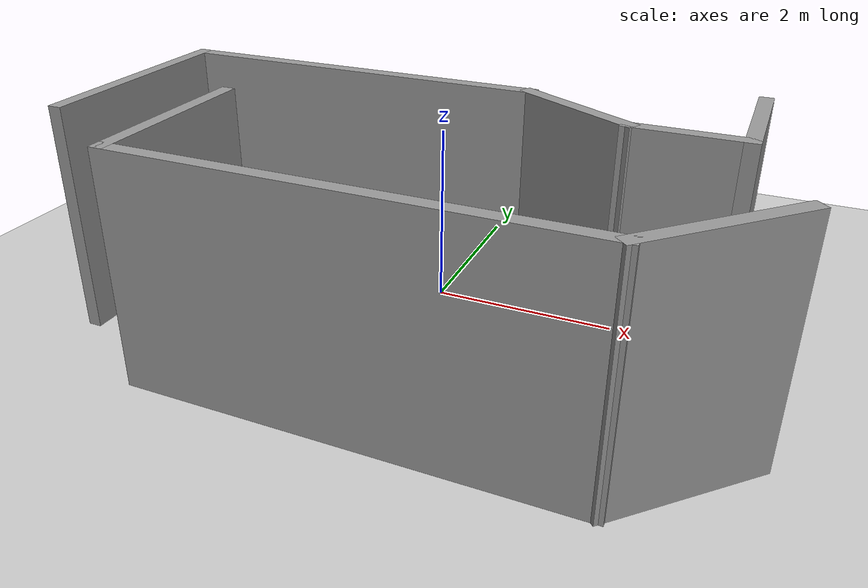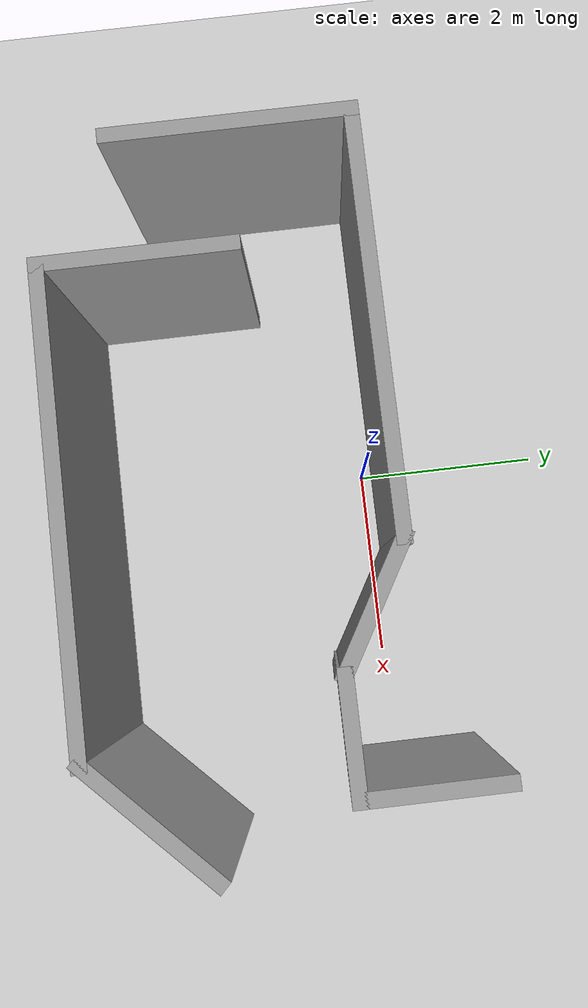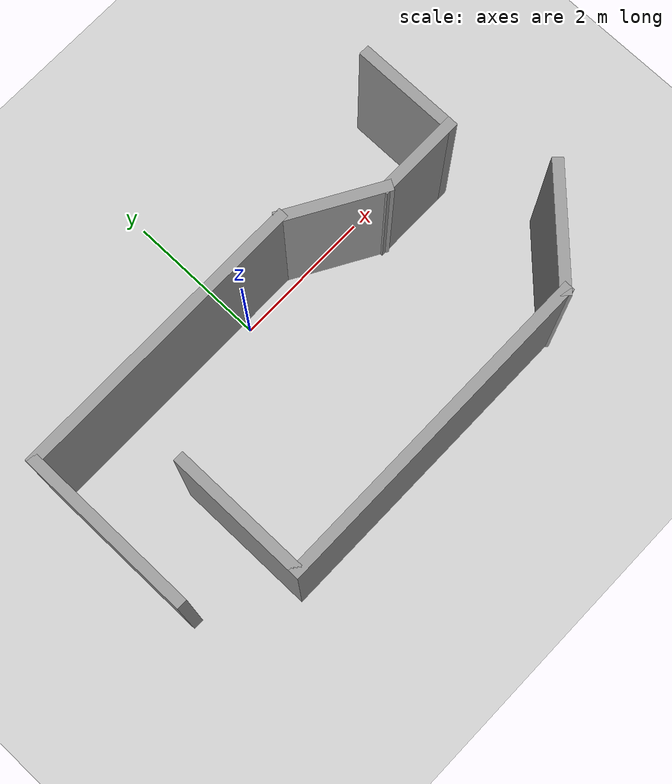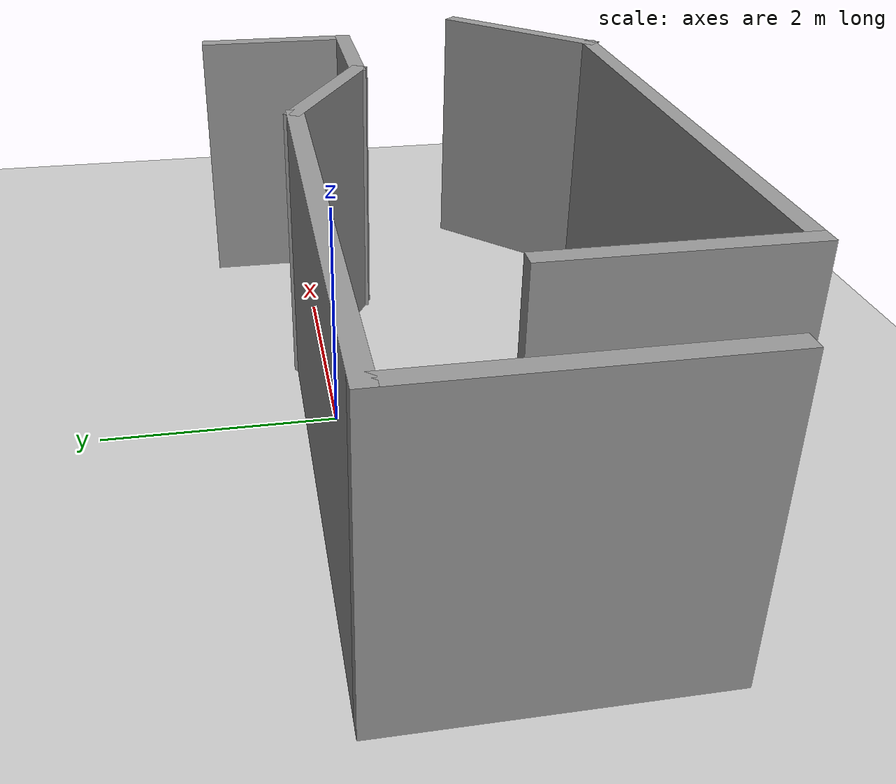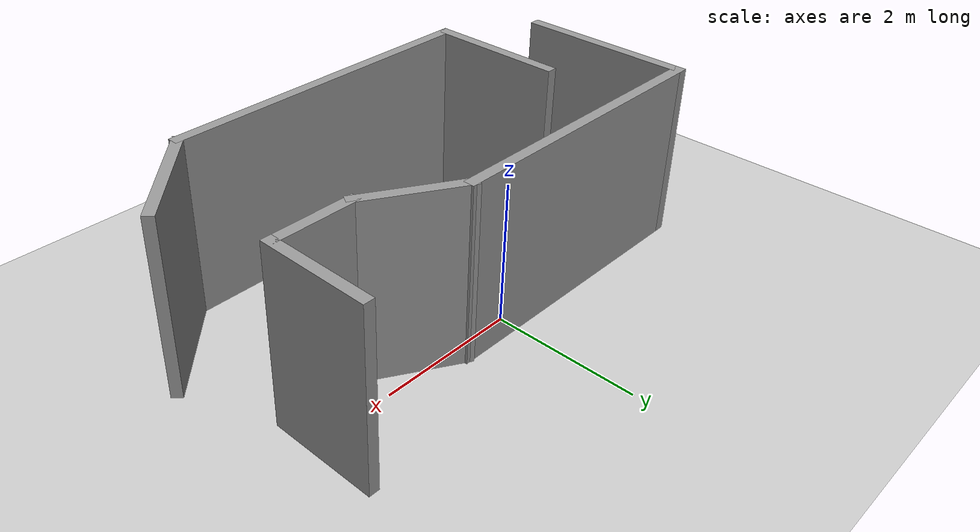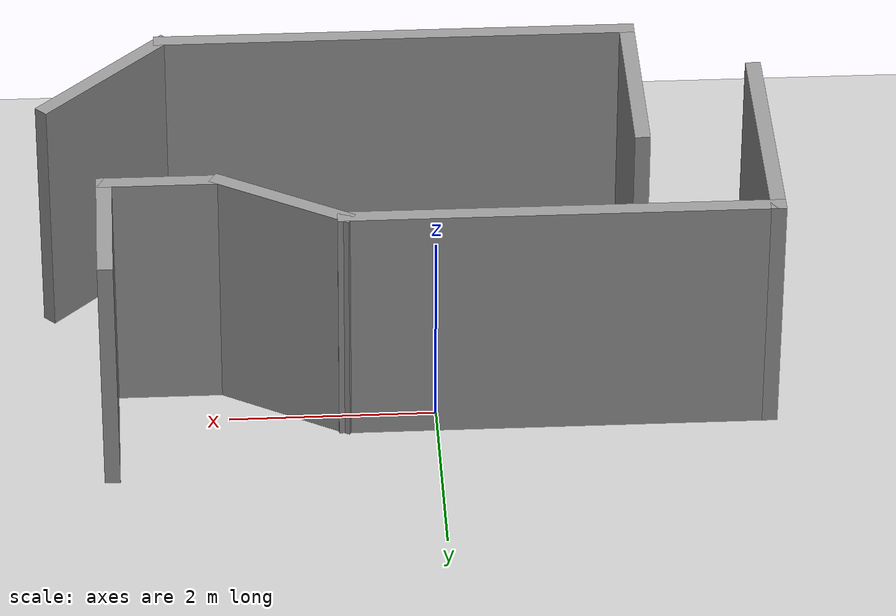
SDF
<sdf version="1.7">
 <world name="default">
  <light name="sun" type="directional">
   <pose>0 0 10 0 -0 0</pose>
   <diffuse>0.8 0.8 0.8 1</diffuse>
   <specular>0.2 0.2 0.2 1</specular>
   <attenuation>
    <range>1000</range>
    <constant>0.9</constant>
    <linear>0.01</linear>
    <quadratic>0.001</quadratic>
   </attenuation>
   <direction>-0.5 0.1 -0.9</direction>
   <spot><inner_angle>0</inner_angle><outer_angle>0</outer_angle><falloff>0</falloff></spot>
  </light>
  <model name="ground_plane">
   <static>1</static>
   <link name="link">
    <collision name="collision">
     <geometry><plane><normal>0 0 1</normal><size>100 100</size></plane></geometry>
     <surface><friction><ode><mu>100</mu><mu2>50</mu2></ode></friction></surface>
    </collision>
    <visual name="visual">
     <cast_shadows>0</cast_shadows>
     <geometry><plane><normal>0 0 1</normal><size>100 100</size></plane></geometry>
     <material>
      <script><uri>file://media/materials/scripts/gazebo.material</uri><name>Gazebo/Grey</name></script>
     </material>
    </visual>
   </link>
  </model>
  <gravity>0 0 -9.8</gravity>
  <magnetic_field>6e-06 2.3e-05 -4.2e-05</magnetic_field>
  <atmosphere type="adiabatic"/>
  <physics type="ode">
   <max_step_size>0.001</max_step_size>
   <real_time_factor>1</real_time_factor>
   <real_time_update_rate>1000</real_time_update_rate>
  </physics>
  <scene><ambient>0.4 0.4 0.4 1</ambient><background>0.7 0.7 0.7 1</background><shadows>1</shadows></scene>
  <audio><device>default</device></audio>
  <spherical_coordinates>
   <surface_model>EARTH_WGS84</surface_model>
   <latitude_deg>0</latitude_deg>
   <longitude_deg>0</longitude_deg>
   <elevation>0</elevation>
   <heading_deg>0</heading_deg>
  </spherical_coordinates>
  <model name="first_world">
   <pose>0.248186 -1.03639 0 0 -0 0</pose>
   <link name="Wall_0">
    <collision name="Wall_0_Collision">
     <geometry><box><size>2 0.15 2.5</size></box></geometry>
     <pose>0 0 1.25 0 -0 0</pose>
    </collision>
    <visual name="Wall_0_Visual">
     <pose>0 0 1.25 0 -0 0</pose>
     <geometry><box><size>2 0.15 2.5</size></box></geometry>
     <material>
      <script><uri>file://media/materials/scripts/gazebo.material</uri><name>Gazebo/Grey</name></script>
      <ambient>1 1 1 1</ambient>
     </material>
     <meta><layer>0</layer></meta>
    </visual>
    <pose>-2.28819 -0.948607 0 0 -0 -1.5708</pose>
   </link>
   <link name="Wall_1">
    <collision name="Wall_1_Collision">
     <geometry><box><size>4.75 0.15 2.5</size></box></geometry>
     <pose>0 0 1.25 0 -0 0</pose>
    </collision>
    <visual name="Wall_1_Visual">
     <pose>0 0 1.25 0 -0 0</pose>
     <geometry><box><size>4.75 0.15 2.5</size></box></geometry>
     <material>
      <script><uri>file://media/materials/scripts/gazebo.material</uri><name>Gazebo/Grey</name></script>
      <ambient>1 1 1 1</ambient>
     </material>
     <meta><layer>0</layer></meta>
    </visual>
    <pose>0.011814 -1.87361 0 0 -0 0</pose>
   </link>
   <link name="Wall_2">
    <collision name="Wall_2_Collision">
     <geometry><box><size>1.75 0.15 2.5</size></box></geometry>
     <pose>0 0 1.25 0 -0 0</pose>
    </collision>
    <visual name="Wall_2_Visual">
     <pose>0 0 1.25 0 -0 0</pose>
     <geometry><box><size>1.75 0.15 2.5</size></box></geometry>
     <material>
      <script><uri>file://media/materials/scripts/gazebo.material</uri><name>Gazebo/Grey</name></script>
      <ambient>1 1 1 1</ambient>
     </material>
     <meta><layer>0</layer></meta>
    </visual>
    <pose>2.8775 -1.30792 0 0 -0 0.785398</pose>
   </link>
   <link name="Wall_4">
    <collision name="Wall_4_Collision">
     <geometry><box><size>2.5 0.15 2.5</size></box></geometry>
     <pose>0 0 1.25 0 -0 0</pose>
    </collision>
    <visual name="Wall_4_Visual">
     <pose>0 0 1.25 0 -0 0</pose>
     <geometry><box><size>2.5 0.15 2.5</size></box></geometry>
     <material>
      <script><uri>file://media/materials/scripts/gazebo.material</uri><name>Gazebo/Grey</name></script>
      <ambient>1 1 1 1</ambient>
     </material>
     <meta><layer>0</layer></meta>
    </visual>
    <pose>-3.47425 0.054673 0 0 -0 1.5708</pose>
   </link>
   <link name="Wall_5">
    <collision name="Wall_5_Collision">
     <geometry><box><size>4.25 0.15 2.5</size></box></geometry>
     <pose>0 0 1.25 0 -0 0</pose>
    </collision>
    <visual name="Wall_5_Visual">
     <pose>0 0 1.25 0 -0 0</pose>
     <geometry><box><size>4.25 0.15 2.5</size></box></geometry>
     <material>
      <script><uri>file://media/materials/scripts/gazebo.material</uri><name>Gazebo/Grey</name></script>
      <ambient>1 1 1 1</ambient>
     </material>
     <meta><layer>0</layer></meta>
    </visual>
    <pose>-1.42425 1.22967 0 0 -0 0</pose>
   </link>
   <link name="Wall_6">
    <collision name="Wall_6_Collision">
     <geometry><box><size>1.5 0.15 2.5</size></box></geometry>
     <pose>0 0 1.25 0 -0 0</pose>
    </collision>
    <visual name="Wall_6_Visual">
     <pose>0 0 1.25 0 -0 0</pose>
     <geometry><box><size>1.5 0.15 2.5</size></box></geometry>
     <material>
      <script><uri>file://media/materials/scripts/gazebo.material</uri><name>Gazebo/Grey</name></script>
      <ambient>1 1 1 1</ambient>
     </material>
     <meta><layer>0</layer></meta>
    </visual>
    <pose>1.21032 0.892173 0 0 -0 -0.523599</pose>
   </link>
   <link name="Wall_7">
    <collision name="Wall_7_Collision">
     <geometry><box><size>1.25 0.15 2.5</size></box></geometry>
     <pose>0 0 1.25 0 -0 0</pose>
    </collision>
    <visual name="Wall_7_Visual">
     <pose>0 0 1.25 0 -0 0</pose>
     <geometry><box><size>1.25 0.15 2.5</size></box></geometry>
     <material>
      <script><uri>file://media/materials/scripts/gazebo.material</uri><name>Gazebo/Grey</name></script>
      <ambient>1 1 1 1</ambient>
     </material>
     <meta><layer>0</layer></meta>
    </visual>
    <pose>2.34488 0.554673 0 0 -0 0</pose>
   </link>
   <link name="Wall_8">
    <collision name="Wall_8_Collision">
     <geometry><box><size>1.5 0.15 2.5</size></box></geometry>
     <pose>0 0 1.25 0 -0 0</pose>
    </collision>
    <visual name="Wall_8_Visual">
     <pose>0 0 1.25 0 -0 0</pose>
     <geometry><box><size>1.5 0.15 2.5</size></box></geometry>
     <material>
      <script><uri>file://media/materials/scripts/gazebo.material</uri><name>Gazebo/Grey</name></script>
      <ambient>1 1 1 1</ambient>
     </material>
     <meta><layer>0</layer></meta>
    </visual>
    <pose>2.89488 1.22967 0 0 -0 1.5708</pose>
   </link>
   <static>1</static>
  </model>
 </world>
</sdf>
